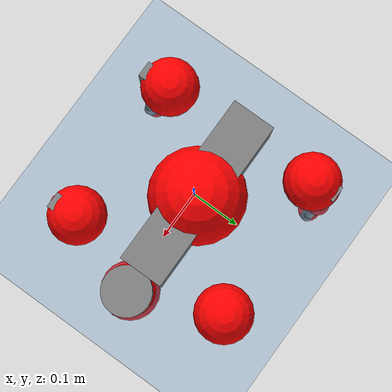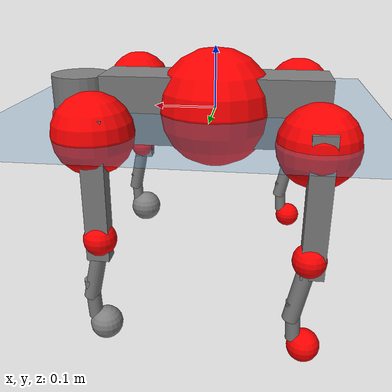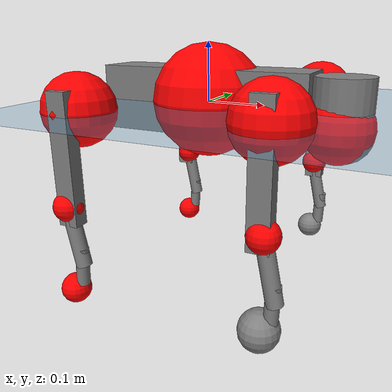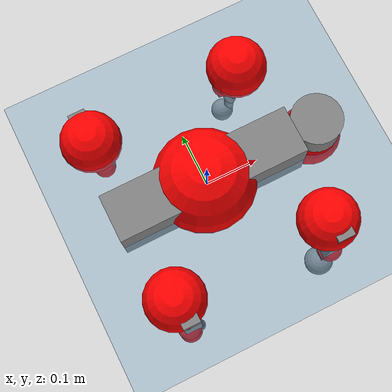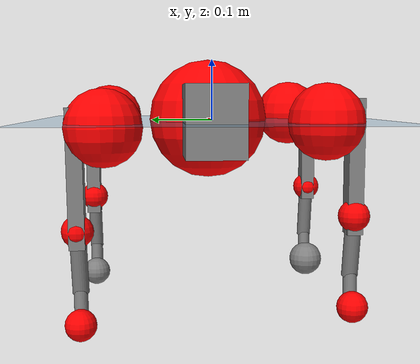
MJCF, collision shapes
<mujoco model="go2">
  <compiler angle="radian" assetdir="assets" balanceinertia="true" inertiafromgeom="false"/>

  <option timestep="0.005" density="1.2" viscosity="2e-05"/>

  <size nkey="1"/>

  <visual>
    <quality shadowsize="8192"/>
    <map shadowclip="0.5"/>
  </visual>

  <default>
    <default class="/">
      <geom contype="0" conaffinity="0" group="1" solref="-1000 -80"/>
      <site size="0.01 0.005 0.005" group="5"/>
      <general forcelimited="true" biastype="affine" gainprm="20" biasprm="0 -20 -0.5"/>
      <default class="go2">
        <joint armature="0.01" damping="0.01" frictionloss="0.2"/>
        <geom condim="1" margin="0.001"/>
        <default class="visual">
          <geom type="mesh" group="2"/>
        </default>
        <default class="collision">
          <geom group="3"/>
          <default class="foot">
            <geom size="0.022 0 0" condim="6" priority="1" friction="0.8 0.02 0.01" solimp="0.015 1 0.022"/>
          </default>
        </default>
        <default class="reward_collision_sphere">
          <geom group="5" rgba="1 0 0 1"/>
        </default>
      </default>
    </default>
  </default>

  <asset>
    <texture type="skybox" colorspace="auto" name="//unnamed_texture_0" builtin="gradient" rgb1="0.95 0.95 0.95" rgb2="0.95 0.95 0.95" width="100" height="600"/>
    <texture type="2d" colorspace="auto" name="texplane" builtin="checker" rgb1="0.345 0.575 0.748" rgb2="0.345 0.575 0.748" markrgb="1 1 1" width="512" height="512"/>
    <material name="MatPlane" class="/" texture="texplane" texuniform="true" texrepeat="2 2" specular="0.9"/>
    <material name="metal" class="/" rgba="0.9 0.95 0.95 1"/>
    <material name="black" class="/" rgba="0 0 0 1"/>
    <material name="white" class="/"/>
    <material name="gray" class="/" rgba="0.671705 0.692426 0.77427 1"/>
    <mesh name="base_0" class="/" file="base_0.obj"/>
    <mesh name="base_1" class="/" file="base_1.obj"/>
    <mesh name="base_2" class="/" file="base_2.obj"/>
    <mesh name="base_3" class="/" file="base_3.obj"/>
    <mesh name="base_4" class="/" file="base_4.obj"/>
    <mesh name="hip_0" class="/" file="hip_0.obj"/>
    <mesh name="hip_1" class="/" file="hip_1.obj"/>
    <mesh name="thigh_0" class="/" file="thigh_0.obj"/>
    <mesh name="thigh_1" class="/" file="thigh_1.obj"/>
    <mesh name="thigh_mirror_0" class="/" file="thigh_mirror_0.obj"/>
    <mesh name="thigh_mirror_1" class="/" file="thigh_mirror_1.obj"/>
    <mesh name="calf_0" class="/" file="calf_0.obj"/>
    <mesh name="calf_1" class="/" file="calf_1.obj"/>
    <mesh name="calf_mirror_0" class="/" file="calf_mirror_0.obj"/>
    <mesh name="calf_mirror_1" class="/" file="calf_mirror_1.obj"/>
    <mesh name="foot" class="/" file="foot.obj"/>
  </asset>

  <worldbody>
    <geom name="floor" class="/" size="100 100 0.125" type="plane" group="0" material="MatPlane"/>
    <light name="toplight_shadow" class="/" pos="0 0 5" dir="0.0990148 0.0990148 -0.990148" type="directional" ambient="0.04 0.04 0.04" diffuse="0.55 0.55 0.55" specular="0.12 0.12 0.12"/>
    <light name="toplight_fill" class="/" pos="0 0 5" dir="0.0990148 0.0990148 -0.990148" type="directional" castshadow="false" ambient="0.04 0.04 0.04" diffuse="0.3 0.3 0.3" specular="0.08 0.08 0.08"/>
    <body name="trunk" childclass="go2" pos="-0.00161679 0.00673028 0.00233719" quat="0.999994 -0.002897 0.000153892 0.00176442">
      <inertial pos="0.0219957 0.0116462 -0.010739" quat="-0.0216956 0.718108 -0.0161928 0.695405" mass="6.43778" diaginertia="0.0429135 0.707306 0.00329838"/>
      <joint name="//unnamed_joint_0" type="free" armature="0" damping="0" frictionloss="0"/>
      <geom name="//unnamed_geom_1" class="visual" material="black" mesh="base_0"/>
      <geom name="//unnamed_geom_2" class="visual" material="black" mesh="base_1"/>
      <geom name="//unnamed_geom_3" class="visual" material="black" mesh="base_2"/>
      <geom name="//unnamed_geom_4" class="visual" material="white" mesh="base_3"/>
      <geom name="//unnamed_geom_5" class="visual" material="gray" mesh="base_4"/>
      <geom name="trunk_1" class="collision" size="0.181948 0.0452211 0.0551359" type="box"/>
      <geom name="trunk_2" class="collision" size="0.0483648 0.0435283" pos="0.225006 0 0.00667566" type="cylinder"/>
      <geom name="trunk_3" class="collision" size="0.0454629" pos="0.231322 0 -0.0400539"/>
      <geom name="//unnamed_geom_9" class="reward_collision_sphere" size="0.0967296"/>
      <geom name="//unnamed_geom_10" class="reward_collision_sphere" size="0.0580378" pos="0.221059 0 -0.0300405"/>
      <site name="imu" pos="-0.023415 0.00618907 0.0344966" size="0.00967296"/>
      <camera name="track" pos="0 -2.88966 0" quat="0.707107 0.707107 0 0" mode="trackcom"/>
      <camera name="ego_camera" pos="0.246322 0 0.0300405" quat="-0.5 -0.5 0.5 0.5"/>
      <body name="FL_hip" pos="0.153764 0.0701646 0.000597776" quat="1 -8.80045e-05 0.000537948 0.000539006">
        <inertial pos="-0.00405211 0.0117036 0.00228372" quat="0.503051 0.444346 0.519613 0.528677" mass="0.61862" diaginertia="0.000264242 0.00390731 6.18324e-05"/>
        <joint name="FL_hip_joint" pos="0 0 0" axis="0.999609 -0.0225606 -0.0164943" range="-0.946813 1.05407" armature="0.00959787" damping="0.0190171" frictionloss="0.178806"/>
        <geom name="//unnamed_geom_11" class="visual" material="metal" mesh="hip_0"/>
        <geom name="//unnamed_geom_12" class="visual" material="gray" mesh="hip_1"/>
        <geom name="//unnamed_geom_13" class="collision" size="0.0444956 0.0193459" pos="0 0.115586 0" quat="0.707107 0.707107 0 0" type="cylinder"/>
        <geom name="//unnamed_geom_14" class="reward_collision_sphere" size="0.0580378" pos="0 0.101138 0"/>
        <body name="FL_thigh" pos="-0.00864221 0.132958 -0.00174372" quat="0.999982 -0.00182005 -0.00438734 -0.00374309">
          <inertial pos="-0.00468774 -0.0443473 -0.021558" quat="0.838382 0.0852054 -0.0131849 0.53822" mass="0.995683" diaginertia="0.00208765 0.0320917 0.000119309"/>
          <joint name="FL_thigh_joint" pos="0 0 0" axis="0.0140318 0.999372 -0.0325329" range="-1.43211 3.70366" armature="0.00398092" damping="0.0100691" frictionloss="0.245558"/>
          <geom name="//unnamed_geom_15" class="visual" material="metal" mesh="thigh_0"/>
          <geom name="//unnamed_geom_16" class="visual" material="gray" mesh="thigh_1"/>
          <geom name="//unnamed_geom_17" class="collision" size="0.103017 0.0118494 0.016444" pos="0 0 -0.0710957" quat="0.707107 0 0.707107 0" type="box"/>
          <body name="FL_calf" pos="-0.00102155 -0.000735478 -0.144867" quat="1 0.000177982 0.000183162 -0.000467851">
            <inertial pos="0.0148292 0.00531013 -0.0858412" quat="0.702716 -0.00341276 -0.0129532 0.711344" mass="0.227395" diaginertia="0.000494278 0.00861883 7.53452e-06"/>
            <joint name="FL_calf_joint" pos="0 0 0" axis="0.0194788 0.999798 0.00491094" range="-2.96648 -1.0059" armature="0.0124871" damping="0.0541305" frictionloss="0.168537"/>
            <geom name="//unnamed_geom_18" class="visual" material="gray" mesh="calf_0"/>
            <geom name="//unnamed_geom_19" class="visual" material="black" mesh="calf_1"/>
            <geom name="FL_calf0" class="collision" size="0.0116076 0.0580378" pos="0.00631596 0 -0.0400539" quat="0.994493 0 -0.104807 0" type="cylinder"/>
            <geom name="//unnamed_geom_21" class="collision" size="0.0106403 0.0314371" pos="0.0157899 0 -0.0987997" quat="0.999688 0 0.0249974 0" type="cylinder"/>
            <geom name="//unnamed_geom_22" class="visual" pos="0 0 -0.142191" quat="1 0 0 0" material="black" mesh="foot"/>
            <geom name="FL_foot" class="foot" size="0.0243875" pos="-0.00157899 0 -0.142191"/>
            <geom name="//unnamed_geom_24" class="reward_collision_sphere" size="0.0241824"/>
            <geom name="//unnamed_geom_25" class="reward_collision_sphere" size="0.0241824" pos="-0.00157899 0 -0.142191"/>
            <site name="FL_foot" class="foot" pos="-0.00157899 0 -0.142191" size="0.00967296"/>
          </body>
        </body>
      </body>
      <body name="FR_hip" pos="0.164599 -0.0627905 0.00523622" quat="1 0.000323237 5.84199e-05 -0.000234146">
        <inertial pos="-0.00426094 -0.00613605 0.00365582" quat="0.502068 0.51468 0.457038 0.523592" mass="0.651457" diaginertia="0.000301668 0.00375143 6.26078e-05"/>
        <joint name="FR_hip_joint" pos="0 0 0" axis="0.999618 -0.0110373 0.0253407" stiffness="0.0632372" range="-1.03528 0.860509" armature="0.0114012" damping="0.0237951" frictionloss="0.174349"/>
        <geom name="//unnamed_geom_26" class="visual" pos="0 6.77119e-09 2.9043e-07" quat="4.63268e-05 1 0 0" material="metal" mesh="hip_0"/>
        <geom name="//unnamed_geom_27" class="visual" pos="0 1.09769e-08 -7.18346e-07" quat="4.63268e-05 1 0 0" material="gray" mesh="hip_1"/>
        <geom name="//unnamed_geom_28" class="collision" size="0.0444956 0.0193459" pos="0 -0.115586 0" quat="0.707107 0.707107 0 0" type="cylinder"/>
        <geom name="//unnamed_geom_29" class="reward_collision_sphere" size="0.0580378" pos="0 -0.101138 0"/>
        <body name="FR_thigh" pos="0.00346627 -0.138288 0.0102508" quat="1 -0.000618907 -0.000334383 -0.000632139">
          <inertial pos="-0.00773496 0.0386268 -0.0324375" quat="0.542925 -0.0115164 0.0910451 0.834752" mass="1.00661" diaginertia="0.00196119 0.0363938 0.000115385"/>
          <joint name="FR_thigh_joint" pos="0 0 0" axis="0.00946451 -0.999886 0.0117311" range="-3.52222 1.5136" armature="0.0140478" damping="0" frictionloss="0.252769"/>
          <geom name="//unnamed_geom_30" class="visual" material="metal" mesh="thigh_mirror_0"/>
          <geom name="//unnamed_geom_31" class="visual" material="gray" mesh="thigh_mirror_1"/>
          <geom name="//unnamed_geom_32" class="collision" size="0.103017 0.0118494 0.016444" pos="0 0 -0.0710957" quat="0.707107 0 0.707107 0" type="box"/>
          <body name="FR_calf" pos="0.00449806 -0.000575764 -0.152109" quat="1 0.000454769 -2.46313e-05 0.000162987">
            <inertial pos="0.011148 -0.00567988 -0.0940895" quat="0.697581 0.0109214 -0.00508107 0.716404" mass="0.185337" diaginertia="0.000404846 0.00712739 6.43446e-06"/>
            <joint name="FR_calf_joint" pos="0 0 0" axis="-0.00552991 -0.999984 -0.00135358" stiffness="0.00284485" range="0.785024 2.68649" armature="0.00970504" damping="0.064008" frictionloss="0.223274"/>
            <geom name="//unnamed_geom_33" class="visual" material="gray" mesh="calf_mirror_0"/>
            <geom name="//unnamed_geom_34" class="visual" material="black" mesh="calf_mirror_1"/>
            <geom name="FR_calf0" class="collision" size="0.0125749 0.0580378" pos="0.00789495 0 -0.0400539" quat="0.995004 0 -0.0998334 0" type="cylinder"/>
            <geom name="//unnamed_geom_36" class="collision" size="0.0106403 0.0314371" pos="0.0157899 0 -0.0987997" quat="0.999688 0 0.0249974 0" type="cylinder"/>
            <geom name="//unnamed_geom_37" class="visual" pos="0 0 -0.142191" quat="1 0 0 0" material="black" mesh="foot"/>
            <geom name="FR_foot" class="foot" size="0.0307836" pos="-0.00157899 0 -0.142191"/>
            <geom name="//unnamed_geom_39" class="reward_collision_sphere" size="0.0241824"/>
            <geom name="//unnamed_geom_40" class="reward_collision_sphere" size="0.0241824" pos="-0.00157899 0 -0.142191"/>
            <site name="FR_foot" class="foot" pos="-0.00157899 0 -0.142191" size="0.00967296"/>
          </body>
        </body>
      </body>
      <body name="RL_hip" pos="-0.152576 0.0624131 -0.00818724" quat="1 -0.00014766 -0.000331786 0.000536265">
        <inertial pos="0.00345557 0.00385682 -0.0061226" quat="0.506949 0.492752 0.498541 0.501652" mass="0.737924" diaginertia="0.000285198 0.0041389 6.17526e-05"/>
        <joint name="RL_hip_joint" pos="0 0 0" axis="-0.999845 -0.00203504 -0.0174941" range="-1.23167 1.10517" armature="0.0101595" damping="0.00367762" frictionloss="0.115565"/>
        <geom name="//unnamed_geom_41" class="visual" pos="-1.0622e-09 0 -2.08215e-07" quat="4.63268e-05 0 1 0" material="metal" mesh="hip_0"/>
        <geom name="//unnamed_geom_42" class="visual" pos="-1.72195e-09 0 -1.84657e-07" quat="4.63268e-05 0 1 0" material="gray" mesh="hip_1"/>
        <geom name="//unnamed_geom_43" class="collision" size="0.0444956 0.0193459" pos="0 0.115586 0" quat="0.707107 0.707107 0 0" type="cylinder"/>
        <geom name="//unnamed_geom_44" class="reward_collision_sphere" size="0.0580378" pos="0 0.101138 0"/>
        <body name="RL_thigh" pos="-0.00154043 0.142412 -0.00187094" quat="0.999986 -0.00274995 -0.00276849 0.00367099">
          <inertial pos="-0.00207999 -0.0450782 -0.0246624" quat="0.828769 0.0824834 -0.0598548 0.550232" mass="1.1915" diaginertia="0.00194216 0.0341942 0.000102021"/>
          <joint name="RL_thigh_joint" pos="0 0 0" axis="0.036249 0.99816 0.0485998" range="-0.53235 4.50776" armature="0.00643019" damping="0" frictionloss="0.245895"/>
          <geom name="//unnamed_geom_45" class="visual" material="metal" mesh="thigh_0"/>
          <geom name="//unnamed_geom_46" class="visual" material="gray" mesh="thigh_1"/>
          <geom name="//unnamed_geom_47" class="collision" size="0.103017 0.0118494 0.016444" pos="0 0 -0.0710957" quat="0.707107 0 0.707107 0" type="box"/>
          <body name="RL_calf" pos="0.00428611 0.000192732 -0.149566" quat="0.999997 -0.00241 0.000801738 0.000259317">
            <inertial pos="0.00688075 -0.00978479 -0.0952048" quat="0.710831 0.00570832 -0.000707309 0.703339" mass="0.223843" diaginertia="0.000497213 0.0100521 7.73806e-06"/>
            <joint name="RL_calf_joint" pos="0 0 0" axis="-0.00358038 0.999976 0.0059726" range="-2.95742 -0.802472" armature="0.00380792" damping="0" frictionloss="0.255353"/>
            <geom name="//unnamed_geom_48" class="visual" material="gray" mesh="calf_0"/>
            <geom name="//unnamed_geom_49" class="visual" material="black" mesh="calf_1"/>
            <geom name="RL_calf0" class="collision" size="0.0125749 0.0580378" pos="0.00789495 0 -0.0400539" quat="0.995004 0 -0.0998334 0" type="cylinder"/>
            <geom name="//unnamed_geom_51" class="collision" size="0.0106403 0.0314371" pos="0.0157899 0 -0.0987997" quat="0.999688 0 0.0249974 0" type="cylinder"/>
            <geom name="//unnamed_geom_52" class="visual" pos="0 0 -0.142191" quat="1 0 0 0" material="black" mesh="foot"/>
            <geom name="RL_foot" class="foot" size="0.0233549" pos="-0.00157899 0 -0.142191"/>
            <geom name="//unnamed_geom_54" class="reward_collision_sphere" size="0.0241824"/>
            <geom name="//unnamed_geom_55" class="reward_collision_sphere" size="0.0241824" pos="-0.00157899 0 -0.142191"/>
            <site name="RL_foot" class="foot" pos="-0.00157899 0 -0.142191" size="0.00967296"/>
          </body>
        </body>
      </body>
      <body name="RR_hip" pos="-0.141043 -0.0659727 -0.00153148" quat="0.99998 0.00176074 -0.00453052 -0.00405829">
        <inertial pos="0.00541127 -0.000497443 -0.000358183" quat="0.504772 0.491477 0.497691 0.505924" mass="0.647602" diaginertia="0.000285711 0.00385895 5.66065e-05"/>
        <joint name="RR_hip_joint" pos="0 0 0" axis="-0.99999 -2.89199e-06 -0.00443302" range="-1.03109 0.909679" armature="0.00468194" damping="0.0109541" frictionloss="0.13502"/>
        <geom name="//unnamed_geom_56" class="visual" pos="1.08489e-09 6.77119e-09 -4.98646e-07" quat="2.14617e-09 4.63268e-05 4.63268e-05 -1" material="metal" mesh="hip_0"/>
        <geom name="//unnamed_geom_57" class="visual" pos="1.66584e-09 1.09769e-08 5.33688e-07" quat="2.14617e-09 4.63268e-05 4.63268e-05 -1" material="gray" mesh="hip_1"/>
        <geom name="//unnamed_geom_58" class="collision" size="0.0444956 0.0193459" pos="0 -0.115586 0" quat="0.707107 0.707107 0 0" type="cylinder"/>
        <geom name="//unnamed_geom_59" class="reward_collision_sphere" size="0.0580378" pos="0 -0.101138 0"/>
        <body name="RR_thigh" pos="0.00696657 -0.146242 0.00274715" quat="0.999998 -0.00066876 -0.000484215 0.00159415">
          <inertial pos="-0.00224936 0.0400485 -0.0226581" quat="0.551666 -0.0197714 0.0843219 0.829556" mass="0.998226" diaginertia="0.00178518 0.0371589 0.000124132"/>
          <joint name="RR_thigh_joint" pos="0 0 0" axis="0.00691736 -0.999975 -0.00119309" range="-4.5117 0.277766" armature="0.0152401" damping="0" frictionloss="0.183304"/>
          <geom name="//unnamed_geom_60" class="visual" material="metal" mesh="thigh_mirror_0"/>
          <geom name="//unnamed_geom_61" class="visual" material="gray" mesh="thigh_mirror_1"/>
          <geom name="//unnamed_geom_62" class="collision" size="0.103017 0.0118494 0.016444" pos="0 0 -0.0710957" quat="0.707107 0 0.707107 0" type="box"/>
          <body name="RR_calf" pos="-0.00581385 0.000230027 -0.146004" quat="1 -0.000175106 2.49934e-05 -0.000343172">
            <inertial pos="0.0105188 0.0010643 -0.0946198" quat="0.70255 -0.00429479 0.00318487 0.711615" mass="0.20149" diaginertia="0.000448593 0.00874782 7.03119e-06"/>
            <joint name="RR_calf_joint" pos="0 0 0" axis="-0.0292399 -0.999165 -0.0285331" range="0.641093 2.63196" armature="0.0100139" damping="0.00420364" frictionloss="0.142187"/>
            <geom name="//unnamed_geom_63" class="visual" material="gray" mesh="calf_mirror_0"/>
            <geom name="//unnamed_geom_64" class="visual" material="black" mesh="calf_mirror_1"/>
            <geom name="RR_calf0" class="collision" size="0.0125749 0.0580378" pos="0.00789495 0 -0.0400539" quat="0.995004 0 -0.0998334 0" type="cylinder"/>
            <geom name="//unnamed_geom_66" class="collision" size="0.0106403 0.0314371" pos="0.0157899 0 -0.0987997" quat="0.999688 0 0.0249974 0" type="cylinder"/>
            <geom name="//unnamed_geom_67" class="visual" pos="0 0 -0.142191" quat="1 0 0 0" material="black" mesh="foot"/>
            <geom name="RR_foot" class="foot" size="0.0112778" pos="-0.00157899 0 -0.142191"/>
            <geom name="//unnamed_geom_69" class="reward_collision_sphere" size="0.0241824"/>
            <geom name="//unnamed_geom_70" class="reward_collision_sphere" size="0.0241824" pos="-0.00157899 0 -0.142191"/>
            <site name="RR_foot" class="foot" pos="-0.00157899 0 -0.142191" size="0.00967296"/>
          </body>
        </body>
      </body>
    </body>
  </worldbody>

  <contact>
    <pair class="/" geom1="floor" geom2="FL_foot" name="//unnamed_contact_0"/>
    <pair class="/" geom1="floor" geom2="FR_foot" name="//unnamed_contact_1"/>
    <pair class="/" geom1="floor" geom2="RL_foot" name="//unnamed_contact_2"/>
    <pair class="/" geom1="floor" geom2="RR_foot" name="//unnamed_contact_3"/>
  </contact>

  <actuator>
    <general name="FL_hip" class="/" joint="FL_hip_joint" forcerange="-19.2099 19.2099" gainprm="19.741" biasprm="0 -19.741 -0.497324"/>
    <general name="FL_thigh" class="/" joint="FL_thigh_joint" forcerange="-21.8289 21.8289" gainprm="19.741" biasprm="0 -19.741 -0.497324"/>
    <general name="FL_calf" class="/" joint="FL_calf_joint" forcerange="-46.1727 46.1727" gainprm="19.741" biasprm="0 -19.741 -0.497324"/>
    <general name="FR_hip" class="/" joint="FR_hip_joint" forcerange="-27.0757 27.0757" gainprm="19.741" biasprm="0 -19.741 -0.497324"/>
    <general name="FR_thigh" class="/" joint="FR_thigh_joint" forcerange="-21.6353 21.6353" gainprm="19.741" biasprm="0 -19.741 -0.497324"/>
    <general name="FR_calf" class="/" joint="FR_calf_joint" forcerange="-56.4072 56.4072" gainprm="19.741" biasprm="0 -19.741 -0.497324"/>
    <general name="RL_hip" class="/" joint="RL_hip_joint" forcerange="-25.1541 25.1541" gainprm="19.741" biasprm="0 -19.741 -0.497324"/>
    <general name="RL_thigh" class="/" joint="RL_thigh_joint" forcerange="-21.7218 21.7218" gainprm="19.741" biasprm="0 -19.741 -0.497324"/>
    <general name="RL_calf" class="/" joint="RL_calf_joint" forcerange="-41.0163 41.0163" gainprm="19.741" biasprm="0 -19.741 -0.497324"/>
    <general name="RR_hip" class="/" joint="RR_hip_joint" forcerange="-26.813 26.813" gainprm="19.741" biasprm="0 -19.741 -0.497324"/>
    <general name="RR_thigh" class="/" joint="RR_thigh_joint" forcerange="-20.183 20.183" gainprm="19.741" biasprm="0 -19.741 -0.497324"/>
    <general name="RR_calf" class="/" joint="RR_calf_joint" forcerange="-27.2343 27.2343" gainprm="19.741" biasprm="0 -19.741 -0.497324"/>
  </actuator>

  <sensor>
    <gyro site="imu" name="imu_angular_velocity"/>
    <velocimeter site="imu" name="imu_linear_velocity"/>
    <framelinvel objtype="site" objname="FL_foot" name="FL_foot_global_linear_velocity"/>
    <framelinvel objtype="site" objname="FR_foot" name="FR_foot_global_linear_velocity"/>
    <framelinvel objtype="site" objname="RL_foot" name="RL_foot_global_linear_velocity"/>
    <framelinvel objtype="site" objname="RR_foot" name="RR_foot_global_linear_velocity"/>
  </sensor>

  <keyframe>
    <key name="home" qpos="0 0 0.325 1 0 0 0 0.1 0.8 -1.5 -0.1 -0.8 1.5 -0.1 0.8 -1.5 0.1 -0.8 1.5"/>
  </keyframe>
</mujoco>
